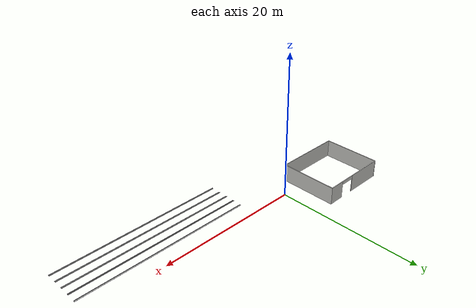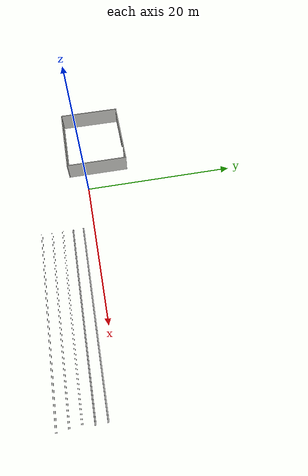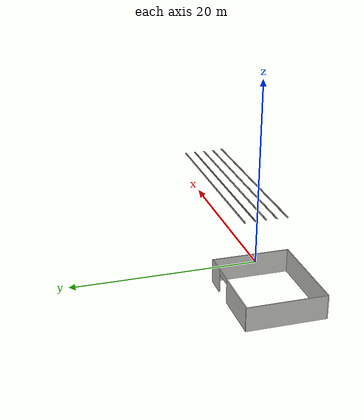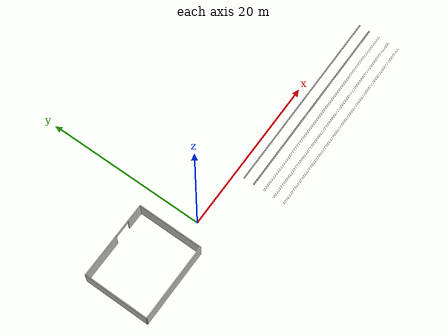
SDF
<sdf version="1.4">
 <world name="default">
  <model name="tray_3">
   <static>1</static>
   <link name="link_0">
    <collision name="collision"><geometry><box><size>23.620 0.15 0.005</size></box></geometry></collision>
    <visual name="visual">
     <geometry><box><size>23.620 0.15 0.005</size></box></geometry>
     <material>
      <script><uri>file://media/materials/scripts/gazebo.material</uri><name>Gazebo/Grey</name></script>
      <emissive>0 0 0 1</emissive>
      <shader type="vertex"><normal_map>__default__</normal_map></shader>
      <specular>0.01 0.01 0.01 1</specular>
      <lighting>1</lighting>
      <ambient>0.7 0.7 0.7 1</ambient>
      <diffuse>0.3 0.3 0.3 1</diffuse>
     </material>
    </visual>
    <pose>18.760 -2.680 1.14965 0.0 0.0 0.0</pose>
   </link>
  </model>
  <model name="tray_4">
   <static>1</static>
   <link name="link_0">
    <collision name="collision"><geometry><box><size>23.620 0.15 0.005</size></box></geometry></collision>
    <visual name="visual">
     <geometry><box><size>23.620 0.15 0.005</size></box></geometry>
     <material>
      <script><uri>file://media/materials/scripts/gazebo.material</uri><name>Gazebo/Grey</name></script>
      <emissive>0 0 0 1</emissive>
      <shader type="vertex"><normal_map>__default__</normal_map></shader>
      <specular>0.01 0.01 0.01 1</specular>
      <lighting>1</lighting>
      <ambient>0.7 0.7 0.7 1</ambient>
      <diffuse>0.3 0.3 0.3 1</diffuse>
     </material>
    </visual>
    <pose>18.760 -1.360 1.14965 0.0 0.0 0.0</pose>
   </link>
  </model>
  <model name="tray_p2_0">
   <static>1</static>
   <link name="link_0">
    <collision name="collision"><geometry><box><size>23.62 0.085 0.005</size></box></geometry></collision>
    <visual name="visual">
     <geometry><box><size>23.62 0.085 0.005</size></box></geometry>
     <material>
      <script><uri>file://media/materials/scripts/gazebo.material</uri><name>Gazebo/Grey</name></script>
      <emissive>0 0 0 1</emissive>
      <shader type="vertex"><normal_map>__default__</normal_map></shader>
      <specular>0.01 0.01 0.01 1</specular>
      <lighting>1</lighting>
      <ambient>0.7 0.7 0.7 1</ambient>
      <diffuse>0.3 0.3 0.3 1</diffuse>
     </material>
    </visual>
    <pose>18.760 -6.715 1.19165 1.5707 0.0 0.0</pose>
   </link>
  </model>
  <model name="tray_p2_1">
   <static>1</static>
   <link name="link_0">
    <collision name="collision"><geometry><box><size>23.62 0.085 0.005</size></box></geometry></collision>
    <visual name="visual">
     <geometry><box><size>23.62 0.085 0.005</size></box></geometry>
     <material>
      <script><uri>file://media/materials/scripts/gazebo.material</uri><name>Gazebo/Grey</name></script>
      <emissive>0 0 0 1</emissive>
      <shader type="vertex"><normal_map>__default__</normal_map></shader>
      <specular>0.01 0.01 0.01 1</specular>
      <lighting>1</lighting>
      <ambient>0.7 0.7 0.7 1</ambient>
      <diffuse>0.3 0.3 0.3 1</diffuse>
     </material>
    </visual>
    <pose>18.760 -5.395 1.19165 1.5707 0.0 0.0</pose>
   </link>
  </model>
  <model name="tray_p2_2">
   <static>1</static>
   <link name="link_0">
    <collision name="collision"><geometry><box><size>23.62 0.085 0.005</size></box></geometry></collision>
    <visual name="visual">
     <geometry><box><size>23.62 0.085 0.005</size></box></geometry>
     <material>
      <script><uri>file://media/materials/scripts/gazebo.material</uri><name>Gazebo/Grey</name></script>
      <emissive>0 0 0 1</emissive>
      <shader type="vertex"><normal_map>__default__</normal_map></shader>
      <specular>0.01 0.01 0.01 1</specular>
      <lighting>1</lighting>
      <ambient>0.7 0.7 0.7 1</ambient>
      <diffuse>0.3 0.3 0.3 1</diffuse>
     </material>
    </visual>
    <pose>18.760 -4.075 1.19165 1.5707 0.0 0.0</pose>
   </link>
  </model>
  <model name="tray_p2_3">
   <static>1</static>
   <link name="link_0">
    <collision name="collision"><geometry><box><size>23.62 0.085 0.005</size></box></geometry></collision>
    <visual name="visual">
     <geometry><box><size>23.62 0.085 0.005</size></box></geometry>
     <material>
      <script><uri>file://media/materials/scripts/gazebo.material</uri><name>Gazebo/Grey</name></script>
      <emissive>0 0 0 1</emissive>
      <shader type="vertex"><normal_map>__default__</normal_map></shader>
      <specular>0.01 0.01 0.01 1</specular>
      <lighting>1</lighting>
      <ambient>0.7 0.7 0.7 1</ambient>
      <diffuse>0.3 0.3 0.3 1</diffuse>
     </material>
    </visual>
    <pose>18.760 -2.755 1.19165 1.5707 0.0 0.0</pose>
   </link>
  </model>
  <model name="tray_p2_4">
   <static>1</static>
   <link name="link_0">
    <collision name="collision"><geometry><box><size>23.62 0.085 0.005</size></box></geometry></collision>
    <visual name="visual">
     <geometry><box><size>23.62 0.085 0.005</size></box></geometry>
     <material>
      <script><uri>file://media/materials/scripts/gazebo.material</uri><name>Gazebo/Grey</name></script>
      <emissive>0 0 0 1</emissive>
      <shader type="vertex"><normal_map>__default__</normal_map></shader>
      <specular>0.01 0.01 0.01 1</specular>
      <lighting>1</lighting>
      <ambient>0.7 0.7 0.7 1</ambient>
      <diffuse>0.3 0.3 0.3 1</diffuse>
     </material>
    </visual>
    <pose>18.760 -1.435 1.19165 1.5707 0.0 0.0</pose>
   </link>
  </model>
  <model name="tray_p2_5">
   <static>1</static>
   <link name="link_0">
    <collision name="collision"><geometry><box><size>23.62 0.085 0.005</size></box></geometry></collision>
    <visual name="visual">
     <geometry><box><size>23.62 0.085 0.005</size></box></geometry>
     <material>
      <script><uri>file://media/materials/scripts/gazebo.material</uri><name>Gazebo/Grey</name></script>
      <emissive>0 0 0 1</emissive>
      <shader type="vertex"><normal_map>__default__</normal_map></shader>
      <specular>0.01 0.01 0.01 1</specular>
      <lighting>1</lighting>
      <ambient>0.7 0.7 0.7 1</ambient>
      <diffuse>0.3 0.3 0.3 1</diffuse>
     </material>
    </visual>
    <pose>18.760 -6.565 1.19165 1.5707 0.0 0.0</pose>
   </link>
  </model>
  <model name="tray_p2_6">
   <static>1</static>
   <link name="link_0">
    <collision name="collision"><geometry><box><size>23.62 0.085 0.005</size></box></geometry></collision>
    <visual name="visual">
     <geometry><box><size>23.62 0.085 0.005</size></box></geometry>
     <material>
      <script><uri>file://media/materials/scripts/gazebo.material</uri><name>Gazebo/Grey</name></script>
      <emissive>0 0 0 1</emissive>
      <shader type="vertex"><normal_map>__default__</normal_map></shader>
      <specular>0.01 0.01 0.01 1</specular>
      <lighting>1</lighting>
      <ambient>0.7 0.7 0.7 1</ambient>
      <diffuse>0.3 0.3 0.3 1</diffuse>
     </material>
    </visual>
    <pose>18.760 -5.245 1.19165 1.5707 0.0 0.0</pose>
   </link>
  </model>
  <model name="tray_p2_7">
   <static>1</static>
   <link name="link_0">
    <collision name="collision"><geometry><box><size>23.62 0.085 0.005</size></box></geometry></collision>
    <visual name="visual">
     <geometry><box><size>23.62 0.085 0.005</size></box></geometry>
     <material>
      <script><uri>file://media/materials/scripts/gazebo.material</uri><name>Gazebo/Grey</name></script>
      <emissive>0 0 0 1</emissive>
      <shader type="vertex"><normal_map>__default__</normal_map></shader>
      <specular>0.01 0.01 0.01 1</specular>
      <lighting>1</lighting>
      <ambient>0.7 0.7 0.7 1</ambient>
      <diffuse>0.3 0.3 0.3 1</diffuse>
     </material>
    </visual>
    <pose>18.760 -3.925 1.19165 1.5707 0.0 0.0</pose>
   </link>
  </model>
  <model name="tray_p2_8">
   <static>1</static>
   <link name="link_0">
    <collision name="collision"><geometry><box><size>23.62 0.085 0.005</size></box></geometry></collision>
    <visual name="visual">
     <geometry><box><size>23.62 0.085 0.005</size></box></geometry>
     <material>
      <script><uri>file://media/materials/scripts/gazebo.material</uri><name>Gazebo/Grey</name></script>
      <emissive>0 0 0 1</emissive>
      <shader type="vertex"><normal_map>__default__</normal_map></shader>
      <specular>0.01 0.01 0.01 1</specular>
      <lighting>1</lighting>
      <ambient>0.7 0.7 0.7 1</ambient>
      <diffuse>0.3 0.3 0.3 1</diffuse>
     </material>
    </visual>
    <pose>18.760 -2.605 1.19165 1.5707 0.0 0.0</pose>
   </link>
  </model>
  <model name="food_handling_shed_0">
   <static>1</static>
   <pose>-7.470 1.670 0.0 0.0 0.0 3.141</pose>
   <link name="Wall_5">
    <collision name="Wall_5_Collision">
     <geometry><box><size>9.70037 0.1 2.5</size></box></geometry>
     <pose>0 0 1.25 0 -0 0</pose>
    </collision>
    <visual name="Wall_5_Visual">
     <geometry><box><size>9.70037 0.1 2.5</size></box></geometry>
     <meta><layer>0</layer></meta>
     <material>
      <script><uri>file://media/materials/scripts/gazebo.material</uri><name>Gazebo/CeilingTiled</name></script>
      <ambient>1 1 1 1</ambient>
     </material>
     <pose>0 0 1.25 0 -0 0</pose>
    </visual>
    <pose>-0 4.05 0 0 -0 0</pose>
   </link>
   <link name="Wall_6">
    <collision name="Wall_6_Collision">
     <geometry><box><size>8.20047 0.1 2.5</size></box></geometry>
     <pose>0 0 1.25 0 -0 0</pose>
    </collision>
    <visual name="Wall_6_Visual">
     <geometry><box><size>8.20047 0.1 2.5</size></box></geometry>
     <meta><layer>0</layer></meta>
     <material>
      <script><uri>file://media/materials/scripts/gazebo.material</uri><name>Gazebo/CeilingTiled</name></script>
      <ambient>1 1 1 1</ambient>
     </material>
     <pose>0 0 1.25 0 -0 0</pose>
    </visual>
    <pose>4.8 -0 0 0 -0 -1.5708</pose>
   </link>
   <link name="Wall_7">
    <collision name="Wall_7_Collision_0">
     <geometry><box><size>5.3757 0.1 2.5</size></box></geometry>
     <pose>-2.16197 0 1.25 0 -0 0</pose>
    </collision>
    <collision name="Wall_7_Collision_1">
     <geometry><box><size>2.23943 0.1 2.5</size></box></geometry>
     <pose>3.7301 0 1.25 0 -0 0</pose>
    </collision>
    <collision name="Wall_7_Collision_2">
     <geometry><box><size>2.0845 0.1 0.5</size></box></geometry>
     <pose>1.56813 0 2.25 0 -0 0</pose>
    </collision>
    <visual name="Wall_7_Visual_0">
     <geometry><box><size>5.3757 0.1 2.5</size></box></geometry>
     <meta><layer>0</layer></meta>
     <material>
      <script><uri>file://media/materials/scripts/gazebo.material</uri><name>Gazebo/CeilingTiled</name></script>
      <ambient>1 1 1 1</ambient>
     </material>
     <pose>-2.16197 0 1.25 0 -0 0</pose>
    </visual>
    <visual name="Wall_7_Visual_1">
     <geometry><box><size>2.23943 0.1 2.5</size></box></geometry>
     <meta><layer>0</layer></meta>
     <material>
      <script><uri>file://media/materials/scripts/gazebo.material</uri><name>Gazebo/CeilingTiled</name></script>
      <ambient>1 1 1 1</ambient>
     </material>
     <pose>3.7301 0 1.25 0 -0 0</pose>
    </visual>
    <visual name="Wall_7_Visual_2">
     <geometry><box><size>2.0845 0.1 0.5</size></box></geometry>
     <meta><layer>0</layer></meta>
     <material>
      <script><uri>file://media/materials/scripts/gazebo.material</uri><name>Gazebo/CeilingTiled</name></script>
      <ambient>1 1 1 1</ambient>
     </material>
     <pose>1.56813 0 2.25 0 -0 0</pose>
    </visual>
    <pose>-0 -4.05 0 0 -0 3.14159</pose>
   </link>
   <link name="Wall_8">
    <collision name="Wall_8_Collision">
     <geometry><box><size>8.19953 0.1 2.5</size></box></geometry>
     <pose>0 0 1.25 0 -0 0</pose>
    </collision>
    <visual name="Wall_8_Visual">
     <geometry><box><size>8.19953 0.1 2.5</size></box></geometry>
     <meta><layer>0</layer></meta>
     <material>
      <script><uri>file://media/materials/scripts/gazebo.material</uri><name>Gazebo/CeilingTiled</name></script>
      <ambient>1 1 1 1</ambient>
     </material>
     <pose>0 0 1.25 0 -0 0</pose>
    </visual>
    <pose>-4.8 -0 0 0 -0 1.5708</pose>
   </link>
  </model>
  <include><uri>model://sun</uri></include>
 </world>
</sdf>
